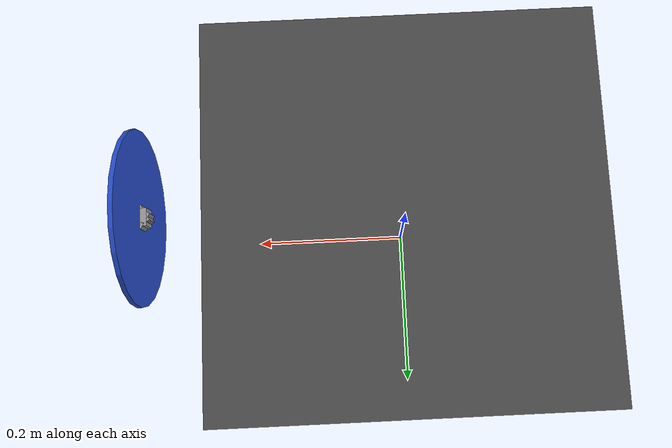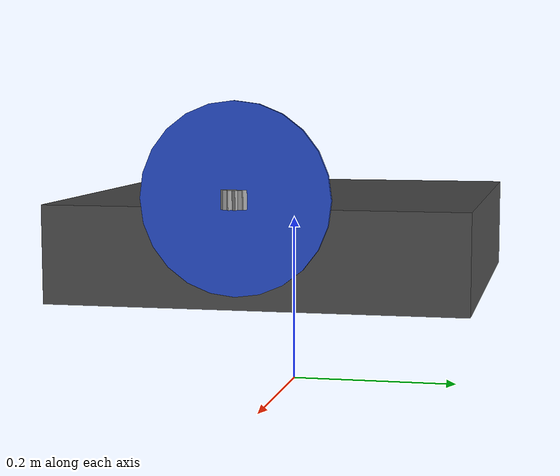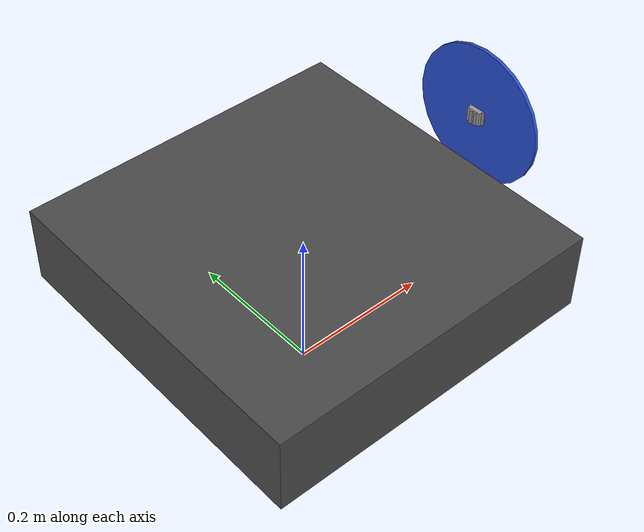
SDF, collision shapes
<?xml version="1.0"?>
<sdf version='1.5'>
  <model name='plane'>
    <pose>0 0 0.246 0 0 0</pose>
    <link name='base_link'>
      <pose>0 0 0 0 0 0</pose>
      <inertial>
        <pose>0 0 0 0 0 0</pose>
        <mass>1.5</mass>
        <inertia>
          <ixx>0.197563</ixx>
          <ixy>0</ixy>
          <ixz>0</ixz>
          <iyy>0.1458929</iyy>
          <iyz>0</iyz>
          <izz>0.1477</izz>
        </inertia>
      </inertial>
      <collision name='base_link_collision'>
        <pose>0 0 -0.07 0 0 0</pose>
        <geometry>
          <box>
            <size>0.47 0.47 0.11</size>
          </box>
        </geometry>
        <surface>
          <contact>
            <ode>
              <max_vel>10</max_vel>
              <min_depth>0.01</min_depth>
            </ode>
          </contact>
        </surface>
      </collision>
      <visual name='base_link_visual'>
        <pose>0.07 0 -0.08 0 0 0</pose>
        <geometry>
          <mesh>
            <scale>0.1 0.1 0.1</scale>
            <uri>model://plane/meshes/body.dae</uri>
          </mesh>
        </geometry>
        <material>
          <script>
            <name>Gazebo/DarkGrey</name>
            <uri>__default__</uri>
          </script>
        </material>
      </visual>
      <gravity>1</gravity>
      <velocity_decay/>
      <self_collide>0</self_collide>
    </link>
    <link name='plane/imu_link'>
      <pose>0 0 0 0 0 0</pose>
      <inertial>
        <pose>0 0 0 0 0 0</pose>
        <mass>0.015</mass>
        <inertia>
          <ixx>1e-05</ixx>
          <ixy>0</ixy>
          <ixz>0</ixz>
          <iyy>1e-05</iyy>
          <iyz>0</iyz>
          <izz>1e-05</izz>
        </inertia>
      </inertial>
    </link>
    <joint name='plane/imu_joint' type='revolute'>
      <child>plane/imu_link</child>
      <parent>base_link</parent>
      <axis>
        <xyz>1 0 0</xyz>
        <limit>
          <lower>0</lower>
          <upper>0</upper>
          <effort>0</effort>
          <velocity>0</velocity>
        </limit>
        <dynamics>
          <spring_reference>0</spring_reference>
          <spring_stiffness>0</spring_stiffness>
        </dynamics>
        <use_parent_model_frame>1</use_parent_model_frame>
      </axis>
    </joint>
    <link name='rotor_puller'>
      <pose>0.3 0 0.0 0 1.57 0</pose>
      <inertial>
        <pose>0 0 0 0 0 0</pose>
        <mass>0.005</mass>
        <inertia>
          <ixx>9.75e-07</ixx>
          <ixy>0</ixy>
          <ixz>0</ixz>
          <iyy>0.000166704</iyy>
          <iyz>0</iyz>
          <izz>0.000167604</izz>
        </inertia>
      </inertial>
      <collision name='rotor_puller_collision'>
        <pose>0.0 0 0.0 0 0 0</pose>
        <geometry>
          <cylinder>
            <length>0.005</length>
            <radius>0.1</radius>
          </cylinder>
        </geometry>
        <surface>
          <contact>
            <ode/>
          </contact>
          <friction>
            <ode/>
          </friction>
        </surface>
      </collision>
      <visual name='rotor_puller_visual'>
        <pose>0 0 -0.09 0 0 0</pose>
        <geometry>
          <mesh>
            <scale>1 1 1</scale>
            <uri>model://plane/meshes/iris_prop_ccw.dae</uri>
          </mesh>
        </geometry>
        <material>
          <script>
            <name>Gazebo/Blue</name>
            <uri>__default__</uri>
          </script>
        </material>
      </visual>
      <gravity>1</gravity>
      <velocity_decay/>
      <self_collide>0</self_collide>
    </link>
    <joint name='rotor_puller_joint' type='revolute'>
      <child>rotor_puller</child>
      <parent>base_link</parent>
      <axis>
        <xyz>1 0 0</xyz>
        <limit>
          <lower>-1e+16</lower>
          <upper>1e+16</upper>
        </limit>
        <dynamics>
          <spring_reference>0</spring_reference>
          <spring_stiffness>0</spring_stiffness>
        </dynamics>
        <use_parent_model_frame>1</use_parent_model_frame>
      </axis>
    </joint>

    <link name="left_elevon">
      <inertial>
        <mass>0.00000001</mass>
        <inertia>
          <ixx>0.000001</ixx>
          <ixy>0.0</ixy>
          <iyy>0.000001</iyy>
          <ixz>0.0</ixz>
          <iyz>0.0</iyz>
          <izz>0.000001</izz>
        </inertia>
        <pose>0 0.3 0 0.00 0 0.0</pose>
      </inertial>
    </link>
    <link name="right_elevon">
      <inertial>
        <mass>0.00000001</mass>
        <inertia>
          <ixx>0.000001</ixx>
          <ixy>0.0</ixy>
          <iyy>0.000001</iyy>
          <ixz>0.0</ixz>
          <iyz>0.0</iyz>
          <izz>0.000001</izz>
        </inertia>
        <pose>0 -0.3 0 0.00 0 0.0</pose>
      </inertial>
    </link>
    <link name="elevator">
      <inertial>
        <mass>0.00000001</mass>
        <inertia>
          <ixx>0.000001</ixx>
          <ixy>0.0</ixy>
          <iyy>0.000001</iyy>
          <ixz>0.0</ixz>
          <iyz>0.0</iyz>
          <izz>0.000001</izz>
        </inertia>
        <pose> -0.5 0 0 0.00 0 0.0</pose>
      </inertial>
    </link>
    <link name="rudder">
      <inertial>
        <mass>0.00000001</mass>
        <inertia>
          <ixx>0.000001</ixx>
          <ixy>0.0</ixy>
          <iyy>0.000001</iyy>
          <ixz>0.0</ixz>
          <iyz>0.0</iyz>
          <izz>0.000001</izz>
        </inertia>
        <pose>-0.5 0 0.05 0 0 0 </pose>
      </inertial>
    </link>
    <joint name='left_elevon_joint' type='revolute'>
      <parent>base_link</parent>
      <child>left_elevon</child>
      <pose>0 0.3 0 0.00 0 0.0</pose>
      <axis>
        <xyz>0 1 0</xyz>
        <limit>
          <!-- -30/+30 deg. -->
          <lower>-0.53</lower>
          <upper>0.53</upper>
        </limit>
        <dynamics>
          <damping>1.000</damping>
        </dynamics>
      </axis>
      <physics>
        <ode>
          <implicit_spring_damper>1</implicit_spring_damper>
        </ode>
      </physics>
    </joint>
    <joint name='right_elevon_joint' type='revolute'>
      <parent>base_link</parent>
      <child>right_elevon</child>
      <pose>0 -0.3 0 0.00 0 0.0</pose>
      <axis>
        <xyz>0 1 0</xyz>
        <limit>
          <!-- -30/+30 deg. -->
          <lower>-0.53</lower>
          <upper>0.53</upper>
        </limit>
        <dynamics>
          <damping>1.000</damping>
        </dynamics>
      </axis>
      <physics>
        <ode>
          <implicit_spring_damper>1</implicit_spring_damper>
        </ode>
      </physics>
    </joint>
    <joint name='elevator_joint' type='revolute'>
      <parent>base_link</parent>
      <child>elevator</child>
      <pose> -0.5 0 0 0 0 0</pose>
      <axis>
        <xyz>0 1 0</xyz>
        <limit>
          <!-- -30/+30 deg. -->
          <lower>-0.53</lower>
          <upper>0.53</upper>
        </limit>
        <dynamics>
          <damping>1.000</damping>
        </dynamics>
      </axis>
      <physics>
        <ode>
          <implicit_spring_damper>1</implicit_spring_damper>
        </ode>
      </physics>
    </joint>
    <joint name='rudder_joint' type='revolute'>
      <parent>base_link</parent>
      <child>rudder</child>
      <pose>-0.5 0 0.05 0.00 0 0.0</pose>
      <axis>
        <xyz>1 0 0</xyz>
        <limit>
          <!-- -30/+30 deg. -->
          <lower>-0.53</lower>
          <upper>0.53</upper>
        </limit>
        <dynamics>
          <damping>1.000</damping>
        </dynamics>
      </axis>
      <physics>
        <ode>
          <implicit_spring_damper>1</implicit_spring_damper>
        </ode>
      </physics>
    </joint>
    <plugin name="left_wing" filename="libLiftDragPlugin.so">
      <a0>0.05984281113</a0>
      <cla>4.752798721</cla>
      <cda>0.6417112299</cda>
      <cma>-1.8</cma>
      <alpha_stall>0.3391428111</alpha_stall>
      <cla_stall>-3.85</cla_stall>
      <cda_stall>-0.9233984055</cda_stall>
      <cma_stall>0</cma_stall>
      <cp>-0.05 0.3 0.05</cp>
      <area>0.12</area>
      <air_density>1.2041</air_density>
      <forward>1 0 0</forward>
      <upward>0 0 1</upward>
      <link_name>base_link</link_name>
      <control_joint_name>
        left_elevon_joint
      </control_joint_name>
      <control_joint_rad_to_cl>-0.5</control_joint_rad_to_cl>
    </plugin>
    <plugin name="right_wing" filename="libLiftDragPlugin.so">
      <a0>0.05984281113</a0>
      <cla>4.752798721</cla>
      <cda>0.6417112299</cda>
      <cma>-1.8</cma>
      <alpha_stall>0.3391428111</alpha_stall>
      <cla_stall>-3.85</cla_stall>
      <cda_stall>-0.9233984055</cda_stall>
      <cma_stall>0</cma_stall>
      <cp>-0.05 -0.3 0.05</cp>
      <area>0.12</area>
      <air_density>1.2041</air_density>
      <forward>1 0 0</forward>
      <upward>0 0 1</upward>
      <link_name>base_link</link_name>
      <control_joint_name>
        right_elevon_joint
      </control_joint_name>
      <control_joint_rad_to_cl>-0.5</control_joint_rad_to_cl>
    </plugin>
    <plugin name="elevator" filename="libLiftDragPlugin.so">
      <a0>-0.2</a0>
      <cla>4.752798721</cla>
      <cda>0.6417112299</cda>
      <cma>-1.8</cma>
      <alpha_stall>0.3391428111</alpha_stall>
      <cla_stall>-3.85</cla_stall>
      <cda_stall>-0.9233984055</cda_stall>
      <cma_stall>0</cma_stall>
      <cp>-0.5 0 0</cp>
      <area>0.01</area>
      <air_density>1.2041</air_density>
      <forward>1 0 0</forward>
      <upward>0 0 1</upward>
      <link_name>base_link</link_name>
      <control_joint_name>
        elevator_joint
      </control_joint_name>
      <control_joint_rad_to_cl>-4.0</control_joint_rad_to_cl>
    </plugin>
    <plugin name="rudder" filename="libLiftDragPlugin.so">
      <a0>0.0</a0>
      <cla>4.752798721</cla>
      <cda>0.6417112299</cda>
      <cma>-1.8</cma>
      <alpha_stall>0.3391428111</alpha_stall>
      <cla_stall>-3.85</cla_stall>
      <cda_stall>-0.9233984055</cda_stall>
      <cma_stall>0</cma_stall>
      <cp>-0.5 0 0.05</cp>
      <area>0.02</area>
      <air_density>1.2041</air_density>
      <forward>1 0 0</forward>
      <upward>0 1 0</upward>
      <link_name>base_link</link_name>
    </plugin>
    <plugin name='puller' filename='libgazebo_motor_model.so'>
      <robotNamespace></robotNamespace>
      <jointName>rotor_puller_joint</jointName>
      <linkName>rotor_puller</linkName>
      <turningDirection>cw</turningDirection>
      <timeConstantUp>0.0125</timeConstantUp>
      <timeConstantDown>0.025</timeConstantDown>
      <maxRotVelocity>3500</maxRotVelocity>
      <motorConstant>8.54858e-06</motorConstant>
      <momentConstant>0.01</momentConstant>
      <commandSubTopic>/gazebo/command/motor_speed</commandSubTopic>
      <motorNumber>4</motorNumber>
      <rotorDragCoefficient>8.06428e-05</rotorDragCoefficient>
      <rollingMomentCoefficient>1e-06</rollingMomentCoefficient>
      <motorSpeedPubTopic>/motor_speed/4</motorSpeedPubTopic>
      <rotorVelocitySlowdownSim>10</rotorVelocitySlowdownSim>
    </plugin>
    <plugin name='gazebo_imu_plugin' filename='libgazebo_imu_plugin.so'>
      <robotNamespace></robotNamespace>
      <linkName>plane/imu_link</linkName>
      <imuTopic>/imu</imuTopic>
      <gyroscopeNoiseDensity>0.0003394</gyroscopeNoiseDensity>
      <gyroscopeRandomWalk>3.8785e-05</gyroscopeRandomWalk>
      <gyroscopeBiasCorrelationTime>1000.0</gyroscopeBiasCorrelationTime>
      <gyroscopeTurnOnBiasSigma>0.0087</gyroscopeTurnOnBiasSigma>
      <accelerometerNoiseDensity>0.004</accelerometerNoiseDensity>
      <accelerometerRandomWalk>0.006</accelerometerRandomWalk>
      <accelerometerBiasCorrelationTime>300.0</accelerometerBiasCorrelationTime>
      <accelerometerTurnOnBiasSigma>0.196</accelerometerTurnOnBiasSigma>
    </plugin>
    <plugin name='wind_plugin' filename='libgazebo_wind_plugin.so'>
      <frameId>base_link</frameId>
      <linkName>base_link</linkName>
      <robotNamespace/>
      <xyzOffset>1 0 0</xyzOffset>
      <windDirection>0 1 0</windDirection>
      <windForceMean>0.7</windForceMean>
      <windGustDirection>0 0 0</windGustDirection>
      <windGustDuration>0</windGustDuration>
      <windGustStart>0</windGustStart>
      <windGustForceMean>0</windGustForceMean>
    </plugin>
    <plugin name="gps_plugin" filename="libgazebo_gps_plugin.so">
        <robotNamespace></robotNamespace>
        <gpsNoise>true</gpsNoise>
    </plugin>
    <plugin name='magnetometer_plugin' filename='libgazebo_magnetometer_plugin.so'>
      <robotNamespace/>
      <pubRate>20</pubRate>
      <noiseDensity>0.0004</noiseDensity>
      <randomWalk>6.4e-06</randomWalk>
      <biasCorrelationTime>600</biasCorrelationTime>
      <magTopic>/mag</magTopic>
    </plugin>
    <plugin name='barometer_plugin' filename='libgazebo_barometer_plugin.so'>
      <robotNamespace/>
      <pubRate>10</pubRate>
      <baroTopic>/baro</baroTopic>
    </plugin>
    <plugin name='mavlink_interface' filename='libgazebo_mavlink_interface.so'>
      <robotNamespace></robotNamespace>
      <imuSubTopic>/imu</imuSubTopic>
      <gpsSubTopic>/gps</gpsSubTopic>
      <magSubTopic>/mag</magSubTopic>
      <baroSubTopic>/baro</baroSubTopic>
      <mavlink_addr>INADDR_ANY</mavlink_addr>
      <mavlink_udp_port>14560</mavlink_udp_port>
      <serialEnabled>false</serialEnabled>
      <serialDevice>/dev/ttyACM0</serialDevice>
      <baudRate>921600</baudRate>
      <qgc_addr>INADDR_ANY</qgc_addr>
      <qgc_udp_port>14550</qgc_udp_port>
      <sdk_addr>INADDR_ANY</sdk_addr>
      <sdk_udp_port>14540</sdk_udp_port>
      <hil_mode>false</hil_mode>
      <hil_state_level>false</hil_state_level>
      <enable_lockstep>true</enable_lockstep>
      <use_tcp>true</use_tcp>
      <motorSpeedCommandPubTopic>/gazebo/command/motor_speed</motorSpeedCommandPubTopic>
      <control_channels>
        <channel name="rotor4">
          <input_index>4</input_index>
          <input_offset>0</input_offset>
          <input_scaling>3500</input_scaling>
          <zero_position_disarmed>0</zero_position_disarmed>
          <zero_position_armed>0</zero_position_armed>
          <joint_control_type>velocity</joint_control_type>
          <joint_name>rotor_puller_joint</joint_name>
        </channel>
        <channel name="left_elevon">
          <input_index>5</input_index>
          <input_offset>0</input_offset>
          <input_scaling>1</input_scaling>
          <zero_position_disarmed>0</zero_position_disarmed>
          <zero_position_armed>0</zero_position_armed>
          <joint_control_type>position_kinematic</joint_control_type>
          <joint_name>left_elevon_joint</joint_name>
        </channel>
        <channel name="right_elevon">
          <input_index>6</input_index>
          <input_offset>0</input_offset>
          <input_scaling>1</input_scaling>
          <zero_position_disarmed>0</zero_position_disarmed>
          <zero_position_armed>0</zero_position_armed>
          <joint_control_type>position_kinematic</joint_control_type>
          <joint_name>right_elevon_joint</joint_name>
        </channel>
        <channel name="elevator">
          <input_index>7</input_index>
          <input_offset>0</input_offset>
          <input_scaling>1</input_scaling>
          <zero_position_disarmed>0</zero_position_disarmed>
          <zero_position_armed>0</zero_position_armed>
          <joint_control_type>position_kinematic</joint_control_type>
          <joint_name>elevator_joint</joint_name>
        </channel>
        <channel name="rudder">
          <input_index>2</input_index>
          <input_offset>0</input_offset>
          <input_scaling>1</input_scaling>
          <zero_position_disarmed>0</zero_position_disarmed>
          <zero_position_armed>0</zero_position_armed>
          <joint_control_type>position_kinematic</joint_control_type>
          <joint_name>rudder_joint</joint_name>
        </channel>
      </control_channels>
    </plugin>
    <static>0</static>

    <include>
      <uri>model://mb1240-xl-ez4</uri>
      <pose>0.3 0 0 0 0 0</pose>
    </include>
    <joint name="mb1240-xl-ez4_joint" type="fixed">
      <child>mb1240-xl-ez4::link</child>
      <parent>plane::base_link</parent>
      <axis>
        <xyz>0 0 1</xyz>
        <limit>
          <upper>0</upper>
          <lower>0</lower>
        </limit>
      </axis>
    </joint>

    <include>
      <uri>model://mb1240-xl-ez4-left</uri>
      <pose>0.3 0 0 0 0 0.5236</pose>
    </include>
    <joint name="mb1240-xl-ez4_joint_left" type="fixed">
      <child>mb1240-xl-ez4-left::link</child>
      <parent>plane::base_link</parent>
      <axis>
        <xyz>0 0 1</xyz>
        <limit>
          <upper>0</upper>
          <lower>0</lower>
        </limit>
      </axis>
    </joint>

    <include>
      <uri>model://mb1240-xl-ez4-right</uri>
      <pose>0.3 0 0 0 0 -0.5236</pose>
    </include>
    <joint name="mb1240-xl-ez4_joint_right" type="fixed">
      <child>mb1240-xl-ez4-right::link</child>
      <parent>plane::base_link</parent>
      <axis>
        <xyz>0 0 1</xyz>
        <limit>
          <upper>0</upper>
          <lower>0</lower>
        </limit>
      </axis>
    </joint>

  </model>
</sdf>

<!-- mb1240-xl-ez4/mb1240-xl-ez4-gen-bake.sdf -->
<sdf version="1.5">

  <model name="mb1240-xl-ez4">

    <link name="link">

      <inertial>
        <mass>0.005</mass>
        <inertia>
          <ixx>3.33333333333e-07</ixx>
          <iyy>3.33333333333e-07</iyy>
          <izz>3.33333333333e-07</izz>
        </inertia>
      </inertial>

      <visual name="visual">
        <geometry>
          <box>
            <size>0.02 0.02 0.02</size>
          </box>
        </geometry>
        <material>
            <script>
              <uri>file://media/materials/scripts/gazebo.material</uri>
              <name>Gazebo/Grey</name>
            </script>
        </material>
      </visual>

      <collision name="collision">
        <geometry>
          <box>
            <size>0.02 0.02 0.02</size>
          </box>
        </geometry>
      </collision>

      <sensor name="sonar" type="sonar">
        <pose>0 0 0 0 -1.5707963259 0</pose>
        <sonar>
          <min>0</min>
          <max>2.00</max>
          <radius>0.3</radius>
        </sonar>
        <plugin name="SonarPlugin" filename="gazebo_sonar_plugin.cpp">
          <robotNamespace></robotNamespace>
          <topicName>/mb12</topicName>
        </plugin>
        <always_on>1</always_on>
        <update_rate>30</update_rate>
        <visualize>true</visualize>
      </sensor>

    </link>

  </model>

</sdf>

<!-- vim: set et ft=xml fenc=utf-8 ff=unix sts=0 sw=2 ts=2 : -->

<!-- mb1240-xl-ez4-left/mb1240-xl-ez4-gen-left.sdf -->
<sdf version="1.5">

  <model name="mb1240-xl-ez4-left">

    <link name="link">

      <inertial>
        <mass>0.005</mass>
        <inertia>
          <ixx>3.33333333333e-07</ixx>
          <iyy>3.33333333333e-07</iyy>
          <izz>3.33333333333e-07</izz>
        </inertia>
      </inertial>

      <visual name="visual">
        <geometry>
          <box>
            <size>0.02 0.02 0.02</size>
          </box>
        </geometry>
        <material>
            <script>
              <uri>file://media/materials/scripts/gazebo.material</uri>
              <name>Gazebo/Grey</name>
            </script>
        </material>
      </visual>

      <collision name="collision">
        <geometry>
          <box>
            <size>0.02 0.02 0.02</size>
          </box>
        </geometry>
      </collision>

      <sensor type="ray" name="sonar">
        <pose>0 0 0 0 0 0</pose>
        <visualize>true</visualize>
        <update_rate>50</update_rate>
        <ray>
          <scan>
            <horizontal>
              <samples>10</samples>
              <resolution>1</resolution>
              <min_angle>-0.1</min_angle>
              <max_angle>0.1</max_angle>
            </horizontal>
            <vertical>
              <samples>10</samples>
              <resolution>1</resolution>
              <min_angle>0</min_angle>
              <max_angle>0</max_angle>
            </vertical>
          </scan>
          <range>
            <min>0.05</min>
            <max>4</max>
            <resolution>0.02</resolution>
          </range>
        </ray>
        <plugin filename="libgazebo_ros_range.so" name="gazebo_ros_range">
          <gaussianNoise>0.005</gaussianNoise>
          <alwaysOn>true</alwaysOn>
          <updateRate>50</updateRate>
          <topicName>sonar_left</topicName>
          <frameName>sonar_link</frameName>
          <radiation>ultrasound</radiation>
          <fov>0.1</fov>
        </plugin>
      </sensor>

    </link>

  </model>

</sdf>

<!-- vim: set et ft=xml fenc=utf-8 ff=unix sts=0 sw=2 ts=2 : -->

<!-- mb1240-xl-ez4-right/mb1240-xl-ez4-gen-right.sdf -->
<sdf version="1.5">

  <model name="mb1240-xl-ez4-right">

    <link name="link">

      <inertial>
        <mass>0.005</mass>
        <inertia>
          <ixx>3.33333333333e-07</ixx>
          <iyy>3.33333333333e-07</iyy>
          <izz>3.33333333333e-07</izz>
        </inertia>
      </inertial>

      <visual name="visual">
        <geometry>
          <box>
            <size>0.02 0.02 0.02</size>
          </box>
        </geometry>
        <material>
            <script>
              <uri>file://media/materials/scripts/gazebo.material</uri>
              <name>Gazebo/Grey</name>
            </script>
        </material>
      </visual>

      <collision name="collision">
        <geometry>
          <box>
            <size>0.02 0.02 0.02</size>
          </box>
        </geometry>
      </collision>

      <sensor type="ray" name="sonar">
        <pose>0 0 0 0 0 0</pose>
        <visualize>true</visualize>
        <update_rate>50</update_rate>
        <ray>
          <scan>
            <horizontal>
              <samples>10</samples>
              <resolution>1</resolution>
              <min_angle>-0.1</min_angle>
              <max_angle>0.1</max_angle>
            </horizontal>
            <vertical>
              <samples>10</samples>
              <resolution>1</resolution>
              <min_angle>0</min_angle>
              <max_angle>0</max_angle>
            </vertical>
          </scan>
          <range>
            <min>0.05</min>
            <max>4</max>
            <resolution>0.02</resolution>
          </range>
        </ray>
        <plugin filename="libgazebo_ros_range.so" name="gazebo_ros_range">
          <gaussianNoise>0.005</gaussianNoise>
          <alwaysOn>true</alwaysOn>
          <updateRate>50</updateRate>
          <topicName>sonar_right</topicName>
          <frameName>sonar_link</frameName>
          <radiation>ultrasound</radiation>
          <fov>0.1</fov>
        </plugin>
      </sensor>

    </link>

  </model>

</sdf>

<!-- vim: set et ft=xml fenc=utf-8 ff=unix sts=0 sw=2 ts=2 : -->
